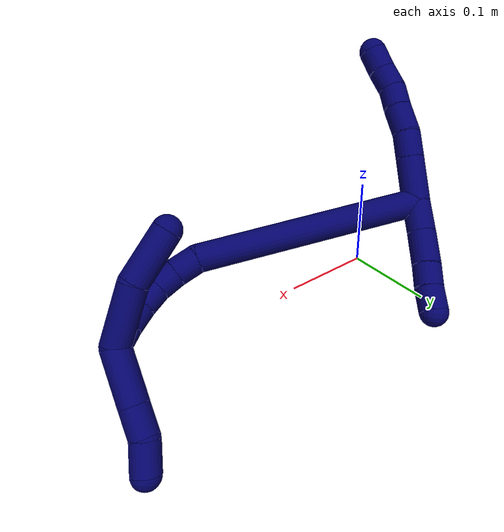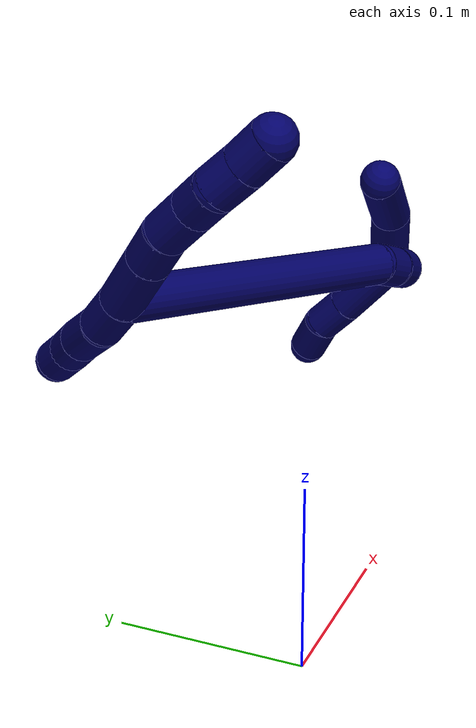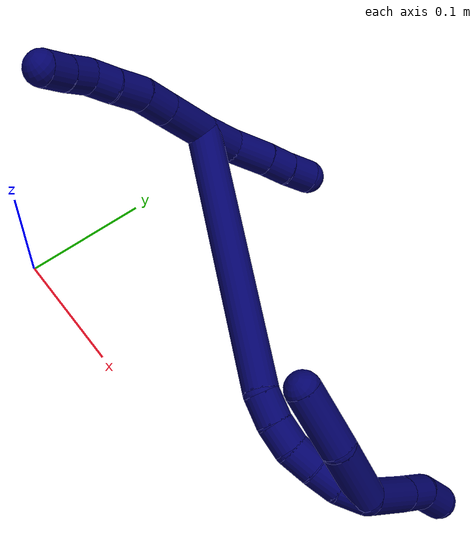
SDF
<sdf version="1.7">
 <world name="default">
  <model name="7">
   <static>0</static>
   <link name="7">
    <collision name="collision-cylinder-e_1_2_8">
     <pose>0.004428 -0.003145 0.019262 0.16183 0.223122 0.018168</pose>
     <geometry><cylinder><radius>0.0125</radius><length>0.040026</length></cylinder></geometry>
     <surface>
      <friction><ode><mu>1.16</mu><mu2>1.16</mu2><slip1>0</slip1><slip2>0</slip2></ode></friction>
      <contact><ode><kp>1e+06</kp><kd>1</kd><max_vel>0</max_vel><min_depth>0.001</min_depth></ode></contact>
     </surface>
    </collision>
    <visual name="visual-cylinder-e_1_2_8">
     <pose>0.004428 -0.003145 0.019262 0.16183 0.223122 0.018168</pose>
     <geometry><cylinder><radius>0.0125</radius><length>0.040026</length></cylinder></geometry>
     <material><ambient>0.003922 0 0.403922 1</ambient></material>
    </visual>
    <collision name="collision-cylinder-e_2_8_9">
     <pose>0.011555 -0.008064 0.049969 0.153832 0.228914 0.017719</pose>
     <geometry><cylinder><radius>0.0125</radius><length>0.023784</length></cylinder></geometry>
     <surface>
      <friction><ode><mu>1.16</mu><mu2>1.16</mu2><slip1>0</slip1><slip2>0</slip2></ode></friction>
      <contact><ode><kp>1e+06</kp><kd>1</kd><max_vel>0</max_vel><min_depth>0.001</min_depth></ode></contact>
     </surface>
    </collision>
    <visual name="visual-cylinder-e_2_8_9">
     <pose>0.011555 -0.008064 0.049969 0.153832 0.228914 0.017719</pose>
     <geometry><cylinder><radius>0.0125</radius><length>0.023784</length></cylinder></geometry>
     <material><ambient>0.003922 0 0.403922 1</ambient></material>
    </visual>
    <collision name="collision-cylinder-e_3_9_10">
     <pose>0.019084 -0.013011 0.072772 0.272405 0.388764 0.053949</pose>
     <geometry><cylinder><radius>0.0125</radius><length>0.025488</length></cylinder></geometry>
     <surface>
      <friction><ode><mu>1.16</mu><mu2>1.16</mu2><slip1>0</slip1><slip2>0</slip2></ode></friction>
      <contact><ode><kp>1e+06</kp><kd>1</kd><max_vel>0</max_vel><min_depth>0.001</min_depth></ode></contact>
     </surface>
    </collision>
    <visual name="visual-cylinder-e_3_9_10">
     <pose>0.019084 -0.013011 0.072772 0.272405 0.388764 0.053949</pose>
     <geometry><cylinder><radius>0.0125</radius><length>0.025488</length></cylinder></geometry>
     <material><ambient>0.003922 0 0.403922 1</ambient></material>
    </visual>
    <collision name="collision-cylinder-e_4_10_11">
     <pose>0.026852 -0.01928 0.093327 0.324718 0.29393 0.048486</pose>
     <geometry><cylinder><radius>0.0125</radius><length>0.020279</length></cylinder></geometry>
     <surface>
      <friction><ode><mu>1.16</mu><mu2>1.16</mu2><slip1>0</slip1><slip2>0</slip2></ode></friction>
      <contact><ode><kp>1e+06</kp><kd>1</kd><max_vel>0</max_vel><min_depth>0.001</min_depth></ode></contact>
     </surface>
    </collision>
    <visual name="visual-cylinder-e_4_10_11">
     <pose>0.026852 -0.01928 0.093327 0.324718 0.29393 0.048486</pose>
     <geometry><cylinder><radius>0.0125</radius><length>0.020279</length></cylinder></geometry>
     <material><ambient>0.003922 0 0.403922 1</ambient></material>
    </visual>
    <collision name="collision-cylinder-e_5_11_12">
     <pose>0.035375 -0.024149 0.110737 0.212541 0.586671 0.064418</pose>
     <geometry><cylinder><radius>0.0125</radius><length>0.020178</length></cylinder></geometry>
     <surface>
      <friction><ode><mu>1.16</mu><mu2>1.16</mu2><slip1>0</slip1><slip2>0</slip2></ode></friction>
      <contact><ode><kp>1e+06</kp><kd>1</kd><max_vel>0</max_vel><min_depth>0.001</min_depth></ode></contact>
     </surface>
    </collision>
    <visual name="visual-cylinder-e_5_11_12">
     <pose>0.035375 -0.024149 0.110737 0.212541 0.586671 0.064418</pose>
     <geometry><cylinder><radius>0.0125</radius><length>0.020178</length></cylinder></geometry>
     <material><ambient>0.003922 0 0.403922 1</ambient></material>
    </visual>
    <collision name="collision-cylinder-e_6_12_6">
     <pose>0.046095 -0.027453 0.127539 0.176537 0.531976 0.048212</pose>
     <geometry><cylinder><radius>0.0125</radius><length>0.020246</length></cylinder></geometry>
     <surface>
      <friction><ode><mu>1.16</mu><mu2>1.16</mu2><slip1>0</slip1><slip2>0</slip2></ode></friction>
      <contact><ode><kp>1e+06</kp><kd>1</kd><max_vel>0</max_vel><min_depth>0.001</min_depth></ode></contact>
     </surface>
    </collision>
    <visual name="visual-cylinder-e_6_12_6">
     <pose>0.046095 -0.027453 0.127539 0.176537 0.531976 0.048212</pose>
     <geometry><cylinder><radius>0.0125</radius><length>0.020246</length></cylinder></geometry>
     <material><ambient>0.003922 0 0.403922 1</ambient></material>
    </visual>
    <collision name="collision-cylinder-e_1_2_13">
     <pose>-0.003447 0.003116 -0.013296 -2.91141 -0.247284 1.64307</pose>
     <geometry><cylinder><radius>0.0125</radius><length>0.028169</length></cylinder></geometry>
     <surface>
      <friction><ode><mu>1.16</mu><mu2>1.16</mu2><slip1>0</slip1><slip2>0</slip2></ode></friction>
      <contact><ode><kp>1e+06</kp><kd>1</kd><max_vel>0</max_vel><min_depth>0.001</min_depth></ode></contact>
     </surface>
    </collision>
    <visual name="visual-cylinder-e_1_2_13">
     <pose>-0.003447 0.003116 -0.013296 -2.91141 -0.247284 1.64307</pose>
     <geometry><cylinder><radius>0.0125</radius><length>0.028169</length></cylinder></geometry>
     <material><ambient>0.003922 0 0.403922 1</ambient></material>
    </visual>
    <collision name="collision-cylinder-e_2_13_14">
     <pose>-0.009265 0.012508 -0.040425 -2.71567 -0.154781 0.688638</pose>
     <geometry><cylinder><radius>0.0125</radius><length>0.03075</length></cylinder></geometry>
     <surface>
      <friction><ode><mu>1.16</mu><mu2>1.16</mu2><slip1>0</slip1><slip2>0</slip2></ode></friction>
      <contact><ode><kp>1e+06</kp><kd>1</kd><max_vel>0</max_vel><min_depth>0.001</min_depth></ode></contact>
     </surface>
    </collision>
    <visual name="visual-cylinder-e_2_13_14">
     <pose>-0.009265 0.012508 -0.040425 -2.71567 -0.154781 0.688638</pose>
     <geometry><cylinder><radius>0.0125</radius><length>0.03075</length></cylinder></geometry>
     <material><ambient>0.003922 0 0.403922 1</ambient></material>
    </visual>
    <collision name="collision-cylinder-e_3_14_15">
     <pose>-0.012898 0.022423 -0.063504 -2.76658 -0.126452 0.644127</pose>
     <geometry><cylinder><radius>0.0125</radius><length>0.02003</length></cylinder></geometry>
     <surface>
      <friction><ode><mu>1.16</mu><mu2>1.16</mu2><slip1>0</slip1><slip2>0</slip2></ode></friction>
      <contact><ode><kp>1e+06</kp><kd>1</kd><max_vel>0</max_vel><min_depth>0.001</min_depth></ode></contact>
     </surface>
    </collision>
    <visual name="visual-cylinder-e_3_14_15">
     <pose>-0.012898 0.022423 -0.063504 -2.76658 -0.126452 0.644127</pose>
     <geometry><cylinder><radius>0.0125</radius><length>0.02003</length></cylinder></geometry>
     <material><ambient>0.003922 0 0.403922 1</ambient></material>
    </visual>
    <collision name="collision-cylinder-e_4_15_5">
     <pose>-0.016423 0.029856 -0.082303 -2.7636 -0.216516 1.0334</pose>
     <geometry><cylinder><radius>0.0125</radius><length>0.021051</length></cylinder></geometry>
     <surface>
      <friction><ode><mu>1.16</mu><mu2>1.16</mu2><slip1>0</slip1><slip2>0</slip2></ode></friction>
      <contact><ode><kp>1e+06</kp><kd>1</kd><max_vel>0</max_vel><min_depth>0.001</min_depth></ode></contact>
     </surface>
    </collision>
    <visual name="visual-cylinder-e_4_15_5">
     <pose>-0.016423 0.029856 -0.082303 -2.7636 -0.216516 1.0334</pose>
     <geometry><cylinder><radius>0.0125</radius><length>0.021051</length></cylinder></geometry>
     <material><ambient>0.003922 0 0.403922 1</ambient></material>
    </visual>
    <collision name="collision-cylinder-e_1_2_16">
     <pose>0.091512 0.009287 -0.036548 -2.89275 1.17993 -2.77224</pose>
     <geometry><cylinder><radius>0.0125</radius><length>0.197954</length></cylinder></geometry>
     <surface>
      <friction><ode><mu>1.16</mu><mu2>1.16</mu2><slip1>0</slip1><slip2>0</slip2></ode></friction>
      <contact><ode><kp>1e+06</kp><kd>1</kd><max_vel>0</max_vel><min_depth>0.001</min_depth></ode></contact>
     </surface>
    </collision>
    <visual name="visual-cylinder-e_1_2_16">
     <pose>0.091512 0.009287 -0.036548 -2.89275 1.17993 -2.77224</pose>
     <geometry><cylinder><radius>0.0125</radius><length>0.197954</length></cylinder></geometry>
     <material><ambient>0.003922 0 0.403922 1</ambient></material>
    </visual>
    <collision name="collision-cylinder-e_2_16_17">
     <pose>0.191169 0.02017 -0.080097 -2.91754 0.848183 -2.6532</pose>
     <geometry><cylinder><radius>0.0125</radius><length>0.021716</length></cylinder></geometry>
     <surface>
      <friction><ode><mu>1.16</mu><mu2>1.16</mu2><slip1>0</slip1><slip2>0</slip2></ode></friction>
      <contact><ode><kp>1e+06</kp><kd>1</kd><max_vel>0</max_vel><min_depth>0.001</min_depth></ode></contact>
     </surface>
    </collision>
    <visual name="visual-cylinder-e_2_16_17">
     <pose>0.191169 0.02017 -0.080097 -2.91754 0.848183 -2.6532</pose>
     <geometry><cylinder><radius>0.0125</radius><length>0.021716</length></cylinder></geometry>
     <material><ambient>0.003922 0 0.403922 1</ambient></material>
    </visual>
    <collision name="collision-cylinder-e_3_17_18">
     <pose>0.205802 0.024598 -0.094164 -2.76024 0.70586 -2.17625</pose>
     <geometry><cylinder><radius>0.0125</radius><length>0.020005</length></cylinder></geometry>
     <surface>
      <friction><ode><mu>1.16</mu><mu2>1.16</mu2><slip1>0</slip1><slip2>0</slip2></ode></friction>
      <contact><ode><kp>1e+06</kp><kd>1</kd><max_vel>0</max_vel><min_depth>0.001</min_depth></ode></contact>
     </surface>
    </collision>
    <visual name="visual-cylinder-e_3_17_18">
     <pose>0.205802 0.024598 -0.094164 -2.76024 0.70586 -2.17625</pose>
     <geometry><cylinder><radius>0.0125</radius><length>0.020005</length></cylinder></geometry>
     <material><ambient>0.003922 0 0.403922 1</ambient></material>
    </visual>
    <collision name="collision-cylinder-e_4_18_19">
     <pose>0.216779 0.032219 -0.108778 -2.5764 0.465389 -1.36903</pose>
     <geometry><cylinder><radius>0.0125</radius><length>0.020005</length></cylinder></geometry>
     <surface>
      <friction><ode><mu>1.16</mu><mu2>1.16</mu2><slip1>0</slip1><slip2>0</slip2></ode></friction>
      <contact><ode><kp>1e+06</kp><kd>1</kd><max_vel>0</max_vel><min_depth>0.001</min_depth></ode></contact>
     </surface>
    </collision>
    <visual name="visual-cylinder-e_4_18_19">
     <pose>0.216779 0.032219 -0.108778 -2.5764 0.465389 -1.36903</pose>
     <geometry><cylinder><radius>0.0125</radius><length>0.020005</length></cylinder></geometry>
     <material><ambient>0.003922 0 0.403922 1</ambient></material>
    </visual>
    <collision name="collision-cylinder-e_5_19_20">
     <pose>0.224867 0.041759 -0.124445 -2.61188 0.365444 -1.19611</pose>
     <geometry><cylinder><radius>0.0125</radius><length>0.020145</length></cylinder></geometry>
     <surface>
      <friction><ode><mu>1.16</mu><mu2>1.16</mu2><slip1>0</slip1><slip2>0</slip2></ode></friction>
      <contact><ode><kp>1e+06</kp><kd>1</kd><max_vel>0</max_vel><min_depth>0.001</min_depth></ode></contact>
     </surface>
    </collision>
    <visual name="visual-cylinder-e_5_19_20">
     <pose>0.224867 0.041759 -0.124445 -2.61188 0.365444 -1.19611</pose>
     <geometry><cylinder><radius>0.0125</radius><length>0.020145</length></cylinder></geometry>
     <material><ambient>0.003922 0 0.403922 1</ambient></material>
    </visual>
    <collision name="collision-cylinder-e_6_20_1">
     <pose>0.230427 0.053323 -0.139741 -2.38253 0.195584 -0.482341</pose>
     <geometry><cylinder><radius>0.0125</radius><length>0.020175</length></cylinder></geometry>
     <surface>
      <friction><ode><mu>1.16</mu><mu2>1.16</mu2><slip1>0</slip1><slip2>0</slip2></ode></friction>
      <contact><ode><kp>1e+06</kp><kd>1</kd><max_vel>0</max_vel><min_depth>0.001</min_depth></ode></contact>
     </surface>
    </collision>
    <visual name="visual-cylinder-e_6_20_1">
     <pose>0.230427 0.053323 -0.139741 -2.38253 0.195584 -0.482341</pose>
     <geometry><cylinder><radius>0.0125</radius><length>0.020175</length></cylinder></geometry>
     <material><ambient>0.003922 0 0.403922 1</ambient></material>
    </visual>
    <collision name="collision-cylinder-e_1_1_21">
     <pose>0.228141 0.062625 -0.121438 -0.097475 -0.164366 0.008035</pose>
     <geometry><cylinder><radius>0.0125</radius><length>0.051908</length></cylinder></geometry>
     <surface>
      <friction><ode><mu>1.16</mu><mu2>1.16</mu2><slip1>0</slip1><slip2>0</slip2></ode></friction>
      <contact><ode><kp>1e+06</kp><kd>1</kd><max_vel>0</max_vel><min_depth>0.001</min_depth></ode></contact>
     </surface>
    </collision>
    <visual name="visual-cylinder-e_1_1_21">
     <pose>0.228141 0.062625 -0.121438 -0.097475 -0.164366 0.008035</pose>
     <geometry><cylinder><radius>0.0125</radius><length>0.051908</length></cylinder></geometry>
     <material><ambient>0.003922 0 0.403922 1</ambient></material>
    </visual>
    <collision name="collision-cylinder-e_2_21_4">
     <pose>0.213916 0.063624 -0.074128 0.068271 -0.427893 -0.014839</pose>
     <geometry><cylinder><radius>0.0125</radius><length>0.048092</length></cylinder></geometry>
     <surface>
      <friction><ode><mu>1.16</mu><mu2>1.16</mu2><slip1>0</slip1><slip2>0</slip2></ode></friction>
      <contact><ode><kp>1e+06</kp><kd>1</kd><max_vel>0</max_vel><min_depth>0.001</min_depth></ode></contact>
     </surface>
    </collision>
    <visual name="visual-cylinder-e_2_21_4">
     <pose>0.213916 0.063624 -0.074128 0.068271 -0.427893 -0.014839</pose>
     <geometry><cylinder><radius>0.0125</radius><length>0.048092</length></cylinder></geometry>
     <material><ambient>0.003922 0 0.403922 1</ambient></material>
    </visual>
    <collision name="collision-cylinder-e_1_1_22">
     <pose>0.221839 0.063121 -0.167604 -2.99815 -0.467454 2.55544</pose>
     <geometry><cylinder><radius>0.0125</radius><length>0.046819</length></cylinder></geometry>
     <surface>
      <friction><ode><mu>1.16</mu><mu2>1.16</mu2><slip1>0</slip1><slip2>0</slip2></ode></friction>
      <contact><ode><kp>1e+06</kp><kd>1</kd><max_vel>0</max_vel><min_depth>0.001</min_depth></ode></contact>
     </surface>
    </collision>
    <visual name="visual-cylinder-e_1_1_22">
     <pose>0.221839 0.063121 -0.167604 -2.99815 -0.467454 2.55544</pose>
     <geometry><cylinder><radius>0.0125</radius><length>0.046819</length></cylinder></geometry>
     <material><ambient>0.003922 0 0.403922 1</ambient></material>
    </visual>
    <collision name="collision-cylinder-e_2_22_23">
     <pose>0.205279 0.068275 -0.199487 -2.95043 -0.485 2.40211</pose>
     <geometry><cylinder><radius>0.0125</radius><length>0.025788</length></cylinder></geometry>
     <surface>
      <friction><ode><mu>1.16</mu><mu2>1.16</mu2><slip1>0</slip1><slip2>0</slip2></ode></friction>
      <contact><ode><kp>1e+06</kp><kd>1</kd><max_vel>0</max_vel><min_depth>0.001</min_depth></ode></contact>
     </surface>
    </collision>
    <visual name="visual-cylinder-e_2_22_23">
     <pose>0.205279 0.068275 -0.199487 -2.95043 -0.485 2.40211</pose>
     <geometry><cylinder><radius>0.0125</radius><length>0.025788</length></cylinder></geometry>
     <material><ambient>0.003922 0 0.403922 1</ambient></material>
    </visual>
    <collision name="collision-cylinder-e_3_23_3">
     <pose>0.196897 0.071209 -0.224154 -3.08472 -0.173931 2.51091</pose>
     <geometry><cylinder><radius>0.0125</radius><length>0.027393</length></cylinder></geometry>
     <surface>
      <friction><ode><mu>1.16</mu><mu2>1.16</mu2><slip1>0</slip1><slip2>0</slip2></ode></friction>
      <contact><ode><kp>1e+06</kp><kd>1</kd><max_vel>0</max_vel><min_depth>0.001</min_depth></ode></contact>
     </surface>
    </collision>
    <visual name="visual-cylinder-e_3_23_3">
     <pose>0.196897 0.071209 -0.224154 -3.08472 -0.173931 2.51091</pose>
     <geometry><cylinder><radius>0.0125</radius><length>0.027393</length></cylinder></geometry>
     <material><ambient>0.003922 0 0.403922 1</ambient></material>
    </visual>
    <collision name="collision-sphere-3">
     <pose>0.194527 0.071976 -0.237622 0 -0 0</pose>
     <geometry><sphere><radius>0.0125</radius></sphere></geometry>
     <surface>
      <friction><ode><mu>1.16</mu><mu2>1.16</mu2><slip1>0</slip1><slip2>0</slip2></ode></friction>
      <contact><ode><kp>1e+06</kp><kd>1</kd><max_vel>0</max_vel><min_depth>0.001</min_depth></ode></contact>
     </surface>
    </collision>
    <visual name="visual-sphere-3">
     <pose>0.194527 0.071976 -0.237622 0 -0 0</pose>
     <geometry><sphere><radius>0.0125</radius></sphere></geometry>
     <material><ambient>0.003922 0 0.403922 1</ambient></material>
    </visual>
    <collision name="collision-sphere-23">
     <pose>0.199268 0.070443 -0.210686 0 -0 0</pose>
     <geometry><sphere><radius>0.0125</radius></sphere></geometry>
     <surface>
      <friction><ode><mu>1.16</mu><mu2>1.16</mu2><slip1>0</slip1><slip2>0</slip2></ode></friction>
      <contact><ode><kp>1e+06</kp><kd>1</kd><max_vel>0</max_vel><min_depth>0.001</min_depth></ode></contact>
     </surface>
    </collision>
    <visual name="visual-sphere-23">
     <pose>0.199268 0.070443 -0.210686 0 -0 0</pose>
     <geometry><sphere><radius>0.0125</radius></sphere></geometry>
     <material><ambient>0.003922 0 0.403922 1</ambient></material>
    </visual>
    <collision name="collision-sphere-22">
     <pose>0.21129 0.066108 -0.188287 0 -0 0</pose>
     <geometry><sphere><radius>0.0125</radius></sphere></geometry>
     <surface>
      <friction><ode><mu>1.16</mu><mu2>1.16</mu2><slip1>0</slip1><slip2>0</slip2></ode></friction>
      <contact><ode><kp>1e+06</kp><kd>1</kd><max_vel>0</max_vel><min_depth>0.001</min_depth></ode></contact>
     </surface>
    </collision>
    <visual name="visual-sphere-22">
     <pose>0.21129 0.066108 -0.188287 0 -0 0</pose>
     <geometry><sphere><radius>0.0125</radius></sphere></geometry>
     <material><ambient>0.003922 0 0.403922 1</ambient></material>
    </visual>
    <collision name="collision-sphere-4">
     <pose>0.203938 0.062132 -0.052301 0 -0 0</pose>
     <geometry><sphere><radius>0.0125</radius></sphere></geometry>
     <surface>
      <friction><ode><mu>1.16</mu><mu2>1.16</mu2><slip1>0</slip1><slip2>0</slip2></ode></friction>
      <contact><ode><kp>1e+06</kp><kd>1</kd><max_vel>0</max_vel><min_depth>0.001</min_depth></ode></contact>
     </surface>
    </collision>
    <visual name="visual-sphere-4">
     <pose>0.203938 0.062132 -0.052301 0 -0 0</pose>
     <geometry><sphere><radius>0.0125</radius></sphere></geometry>
     <material><ambient>0.003922 0 0.403922 1</ambient></material>
    </visual>
    <collision name="collision-sphere-21">
     <pose>0.223894 0.065117 -0.095955 0 -0 0</pose>
     <geometry><sphere><radius>0.0125</radius></sphere></geometry>
     <surface>
      <friction><ode><mu>1.16</mu><mu2>1.16</mu2><slip1>0</slip1><slip2>0</slip2></ode></friction>
      <contact><ode><kp>1e+06</kp><kd>1</kd><max_vel>0</max_vel><min_depth>0.001</min_depth></ode></contact>
     </surface>
    </collision>
    <visual name="visual-sphere-21">
     <pose>0.223894 0.065117 -0.095955 0 -0 0</pose>
     <geometry><sphere><radius>0.0125</radius></sphere></geometry>
     <material><ambient>0.003922 0 0.403922 1</ambient></material>
    </visual>
    <collision name="collision-sphere-1">
     <pose>0.232388 0.060133 -0.14692 0 -0 0</pose>
     <geometry><sphere><radius>0.0125</radius></sphere></geometry>
     <surface>
      <friction><ode><mu>1.16</mu><mu2>1.16</mu2><slip1>0</slip1><slip2>0</slip2></ode></friction>
      <contact><ode><kp>1e+06</kp><kd>1</kd><max_vel>0</max_vel><min_depth>0.001</min_depth></ode></contact>
     </surface>
    </collision>
    <visual name="visual-sphere-1">
     <pose>0.232388 0.060133 -0.14692 0 -0 0</pose>
     <geometry><sphere><radius>0.0125</radius></sphere></geometry>
     <material><ambient>0.003922 0 0.403922 1</ambient></material>
    </visual>
    <collision name="collision-sphere-12">
     <pose>0.04096 -0.025921 0.11895 0 -0 0</pose>
     <geometry><sphere><radius>0.0125</radius></sphere></geometry>
     <surface>
      <friction><ode><mu>1.16</mu><mu2>1.16</mu2><slip1>0</slip1><slip2>0</slip2></ode></friction>
      <contact><ode><kp>1e+06</kp><kd>1</kd><max_vel>0</max_vel><min_depth>0.001</min_depth></ode></contact>
     </surface>
    </collision>
    <visual name="visual-sphere-12">
     <pose>0.04096 -0.025921 0.11895 0 -0 0</pose>
     <geometry><sphere><radius>0.0125</radius></sphere></geometry>
     <material><ambient>0.003922 0 0.403922 1</ambient></material>
    </visual>
    <collision name="collision-sphere-11">
     <pose>0.02979 -0.022377 0.102525 0 -0 0</pose>
     <geometry><sphere><radius>0.0125</radius></sphere></geometry>
     <surface>
      <friction><ode><mu>1.16</mu><mu2>1.16</mu2><slip1>0</slip1><slip2>0</slip2></ode></friction>
      <contact><ode><kp>1e+06</kp><kd>1</kd><max_vel>0</max_vel><min_depth>0.001</min_depth></ode></contact>
     </surface>
    </collision>
    <visual name="visual-sphere-11">
     <pose>0.02979 -0.022377 0.102525 0 -0 0</pose>
     <geometry><sphere><radius>0.0125</radius></sphere></geometry>
     <material><ambient>0.003922 0 0.403922 1</ambient></material>
    </visual>
    <collision name="collision-sphere-10">
     <pose>0.023915 -0.016184 0.08413 0 -0 0</pose>
     <geometry><sphere><radius>0.0125</radius></sphere></geometry>
     <surface>
      <friction><ode><mu>1.16</mu><mu2>1.16</mu2><slip1>0</slip1><slip2>0</slip2></ode></friction>
      <contact><ode><kp>1e+06</kp><kd>1</kd><max_vel>0</max_vel><min_depth>0.001</min_depth></ode></contact>
     </surface>
    </collision>
    <visual name="visual-sphere-10">
     <pose>0.023915 -0.016184 0.08413 0 -0 0</pose>
     <geometry><sphere><radius>0.0125</radius></sphere></geometry>
     <material><ambient>0.003922 0 0.403922 1</ambient></material>
    </visual>
    <collision name="collision-sphere-9">
     <pose>0.014254 -0.009839 0.061414 0 -0 0</pose>
     <geometry><sphere><radius>0.0125</radius></sphere></geometry>
     <surface>
      <friction><ode><mu>1.16</mu><mu2>1.16</mu2><slip1>0</slip1><slip2>0</slip2></ode></friction>
      <contact><ode><kp>1e+06</kp><kd>1</kd><max_vel>0</max_vel><min_depth>0.001</min_depth></ode></contact>
     </surface>
    </collision>
    <visual name="visual-sphere-9">
     <pose>0.014254 -0.009839 0.061414 0 -0 0</pose>
     <geometry><sphere><radius>0.0125</radius></sphere></geometry>
     <material><ambient>0.003922 0 0.403922 1</ambient></material>
    </visual>
    <collision name="collision-sphere-2">
     <geometry><sphere><radius>0.0125</radius></sphere></geometry>
     <surface>
      <friction><ode><mu>1.16</mu><mu2>1.16</mu2><slip1>0</slip1><slip2>0</slip2></ode></friction>
      <contact><ode><kp>1e+06</kp><kd>1</kd><max_vel>0</max_vel><min_depth>0.001</min_depth></ode></contact>
     </surface>
    </collision>
    <visual name="visual-sphere-2">
     <geometry><sphere><radius>0.0125</radius></sphere></geometry>
     <material><ambient>0.003922 0 0.403922 1</ambient></material>
    </visual>
    <collision name="collision-sphere-19">
     <pose>0.221268 0.037006 -0.116326 0 -0 0</pose>
     <geometry><sphere><radius>0.0125</radius></sphere></geometry>
     <surface>
      <friction><ode><mu>1.16</mu><mu2>1.16</mu2><slip1>0</slip1><slip2>0</slip2></ode></friction>
      <contact><ode><kp>1e+06</kp><kd>1</kd><max_vel>0</max_vel><min_depth>0.001</min_depth></ode></contact>
     </surface>
    </collision>
    <visual name="visual-sphere-19">
     <pose>0.221268 0.037006 -0.116326 0 -0 0</pose>
     <geometry><sphere><radius>0.0125</radius></sphere></geometry>
     <material><ambient>0.003922 0 0.403922 1</ambient></material>
    </visual>
    <collision name="collision-sphere-8">
     <pose>0.008857 -0.006289 0.038524 0 -0 0</pose>
     <geometry><sphere><radius>0.0125</radius></sphere></geometry>
     <surface>
      <friction><ode><mu>1.16</mu><mu2>1.16</mu2><slip1>0</slip1><slip2>0</slip2></ode></friction>
      <contact><ode><kp>1e+06</kp><kd>1</kd><max_vel>0</max_vel><min_depth>0.001</min_depth></ode></contact>
     </surface>
    </collision>
    <visual name="visual-sphere-8">
     <pose>0.008857 -0.006289 0.038524 0 -0 0</pose>
     <geometry><sphere><radius>0.0125</radius></sphere></geometry>
     <material><ambient>0.003922 0 0.403922 1</ambient></material>
    </visual>
    <collision name="collision-sphere-6">
     <pose>0.05123 -0.028986 0.136127 0 -0 0</pose>
     <geometry><sphere><radius>0.0125</radius></sphere></geometry>
     <surface>
      <friction><ode><mu>1.16</mu><mu2>1.16</mu2><slip1>0</slip1><slip2>0</slip2></ode></friction>
      <contact><ode><kp>1e+06</kp><kd>1</kd><max_vel>0</max_vel><min_depth>0.001</min_depth></ode></contact>
     </surface>
    </collision>
    <visual name="visual-sphere-6">
     <pose>0.05123 -0.028986 0.136127 0 -0 0</pose>
     <geometry><sphere><radius>0.0125</radius></sphere></geometry>
     <material><ambient>0.003922 0 0.403922 1</ambient></material>
    </visual>
    <collision name="collision-sphere-13">
     <pose>-0.006895 0.006232 -0.026592 0 -0 0</pose>
     <geometry><sphere><radius>0.0125</radius></sphere></geometry>
     <surface>
      <friction><ode><mu>1.16</mu><mu2>1.16</mu2><slip1>0</slip1><slip2>0</slip2></ode></friction>
      <contact><ode><kp>1e+06</kp><kd>1</kd><max_vel>0</max_vel><min_depth>0.001</min_depth></ode></contact>
     </surface>
    </collision>
    <visual name="visual-sphere-13">
     <pose>-0.006895 0.006232 -0.026592 0 -0 0</pose>
     <geometry><sphere><radius>0.0125</radius></sphere></geometry>
     <material><ambient>0.003922 0 0.403922 1</ambient></material>
    </visual>
    <collision name="collision-sphere-14">
     <pose>-0.011635 0.018784 -0.054259 0 -0 0</pose>
     <geometry><sphere><radius>0.0125</radius></sphere></geometry>
     <surface>
      <friction><ode><mu>1.16</mu><mu2>1.16</mu2><slip1>0</slip1><slip2>0</slip2></ode></friction>
      <contact><ode><kp>1e+06</kp><kd>1</kd><max_vel>0</max_vel><min_depth>0.001</min_depth></ode></contact>
     </surface>
    </collision>
    <visual name="visual-sphere-14">
     <pose>-0.011635 0.018784 -0.054259 0 -0 0</pose>
     <geometry><sphere><radius>0.0125</radius></sphere></geometry>
     <material><ambient>0.003922 0 0.403922 1</ambient></material>
    </visual>
    <collision name="collision-sphere-15">
     <pose>-0.014162 0.026062 -0.072748 0 -0 0</pose>
     <geometry><sphere><radius>0.0125</radius></sphere></geometry>
     <surface>
      <friction><ode><mu>1.16</mu><mu2>1.16</mu2><slip1>0</slip1><slip2>0</slip2></ode></friction>
      <contact><ode><kp>1e+06</kp><kd>1</kd><max_vel>0</max_vel><min_depth>0.001</min_depth></ode></contact>
     </surface>
    </collision>
    <visual name="visual-sphere-15">
     <pose>-0.014162 0.026062 -0.072748 0 -0 0</pose>
     <geometry><sphere><radius>0.0125</radius></sphere></geometry>
     <material><ambient>0.003922 0 0.403922 1</ambient></material>
    </visual>
    <collision name="collision-sphere-5">
     <pose>-0.018684 0.03365 -0.091857 0 -0 0</pose>
     <geometry><sphere><radius>0.0125</radius></sphere></geometry>
     <surface>
      <friction><ode><mu>1.16</mu><mu2>1.16</mu2><slip1>0</slip1><slip2>0</slip2></ode></friction>
      <contact><ode><kp>1e+06</kp><kd>1</kd><max_vel>0</max_vel><min_depth>0.001</min_depth></ode></contact>
     </surface>
    </collision>
    <visual name="visual-sphere-5">
     <pose>-0.018684 0.03365 -0.091857 0 -0 0</pose>
     <geometry><sphere><radius>0.0125</radius></sphere></geometry>
     <material><ambient>0.003922 0 0.403922 1</ambient></material>
    </visual>
    <collision name="collision-sphere-16">
     <pose>0.183025 0.018574 -0.073096 0 -0 0</pose>
     <geometry><sphere><radius>0.0125</radius></sphere></geometry>
     <surface>
      <friction><ode><mu>1.16</mu><mu2>1.16</mu2><slip1>0</slip1><slip2>0</slip2></ode></friction>
      <contact><ode><kp>1e+06</kp><kd>1</kd><max_vel>0</max_vel><min_depth>0.001</min_depth></ode></contact>
     </surface>
    </collision>
    <visual name="visual-sphere-16">
     <pose>0.183025 0.018574 -0.073096 0 -0 0</pose>
     <geometry><sphere><radius>0.0125</radius></sphere></geometry>
     <material><ambient>0.003922 0 0.403922 1</ambient></material>
    </visual>
    <collision name="collision-sphere-17">
     <pose>0.199313 0.021765 -0.087098 0 -0 0</pose>
     <geometry><sphere><radius>0.0125</radius></sphere></geometry>
     <surface>
      <friction><ode><mu>1.16</mu><mu2>1.16</mu2><slip1>0</slip1><slip2>0</slip2></ode></friction>
      <contact><ode><kp>1e+06</kp><kd>1</kd><max_vel>0</max_vel><min_depth>0.001</min_depth></ode></contact>
     </surface>
    </collision>
    <visual name="visual-sphere-17">
     <pose>0.199313 0.021765 -0.087098 0 -0 0</pose>
     <geometry><sphere><radius>0.0125</radius></sphere></geometry>
     <material><ambient>0.003922 0 0.403922 1</ambient></material>
    </visual>
    <collision name="collision-sphere-18">
     <pose>0.21229 0.027431 -0.10123 0 -0 0</pose>
     <geometry><sphere><radius>0.0125</radius></sphere></geometry>
     <surface>
      <friction><ode><mu>1.16</mu><mu2>1.16</mu2><slip1>0</slip1><slip2>0</slip2></ode></friction>
      <contact><ode><kp>1e+06</kp><kd>1</kd><max_vel>0</max_vel><min_depth>0.001</min_depth></ode></contact>
     </surface>
    </collision>
    <visual name="visual-sphere-18">
     <pose>0.21229 0.027431 -0.10123 0 -0 0</pose>
     <geometry><sphere><radius>0.0125</radius></sphere></geometry>
     <material><ambient>0.003922 0 0.403922 1</ambient></material>
    </visual>
    <collision name="collision-sphere-20">
     <pose>0.228467 0.046513 -0.132563 0 -0 0</pose>
     <geometry><sphere><radius>0.0125</radius></sphere></geometry>
     <surface>
      <friction><ode><mu>1.16</mu><mu2>1.16</mu2><slip1>0</slip1><slip2>0</slip2></ode></friction>
      <contact><ode><kp>1e+06</kp><kd>1</kd><max_vel>0</max_vel><min_depth>0.001</min_depth></ode></contact>
     </surface>
    </collision>
    <visual name="visual-sphere-20">
     <pose>0.228467 0.046513 -0.132563 0 -0 0</pose>
     <geometry><sphere><radius>0.0125</radius></sphere></geometry>
     <material><ambient>0.003922 0 0.403922 1</ambient></material>
    </visual>
    <inertial>
     <pose>0.113662 0.023698 -0.055279 0 -0 0</pose>
     <mass>0.75</mass>
     <inertia>
      <ixx>-0.000264</ixx>
      <ixy>0</ixy>
      <ixz>0</ixz>
      <iyy>0.000624</iyy>
      <iyz>0</iyz>
      <izz>-0.000673</izz>
     </inertia>
    </inertial>
   </link>
   <pose>0.064855 0.127422 0.151908 0.553558 -0.129028 -0.714905</pose>
  </model>
 </world>
</sdf>
